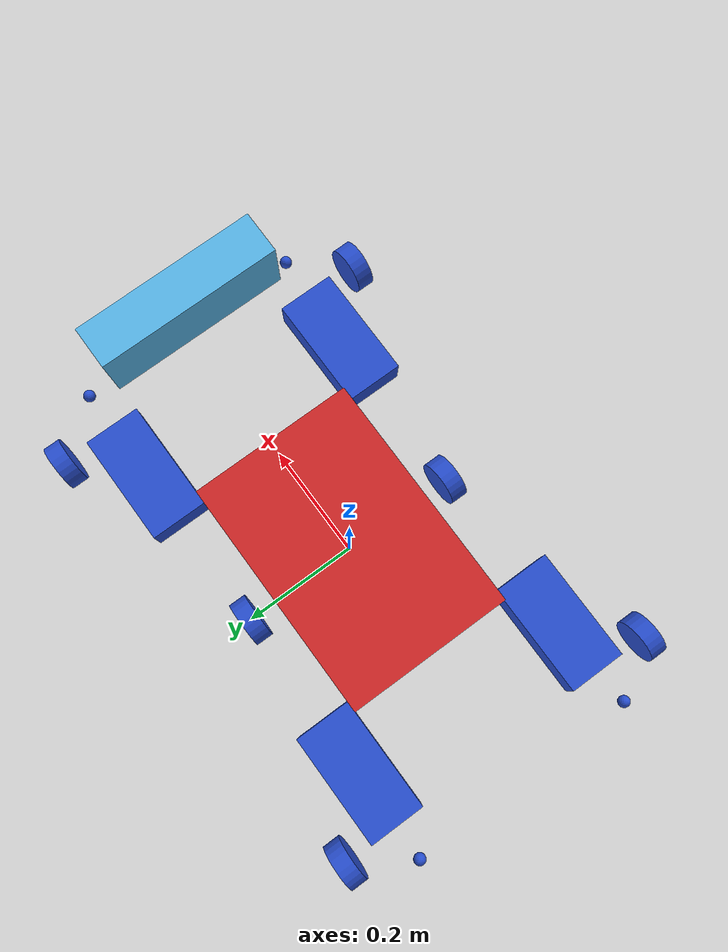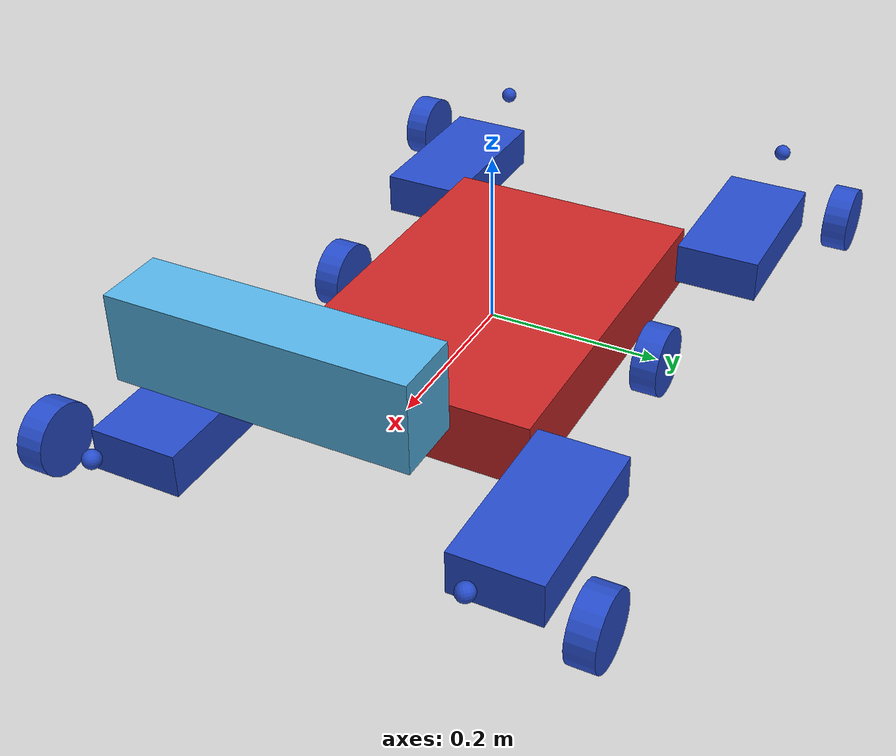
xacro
<?xml version='1.0'?>

<robot name="cpmbot" xmlns:xacro="http://www.ros.org/wiki/xacro">
<!-- variables and arguments-->
   <xacro:arg name="base_wheel_enabled" default="true" />
   <xacro:arg name="arms_enabled" default="true" />
   <xacro:arg name="arms_wheels_enabled" default="true" />
   <xacro:arg name="arms_mecanum_wheels_enabled" default="true" />
   <xacro:arg name="kinect_enabled" default="true" />
   <xacro:arg name="robotic_arm_enabled" default="false" />
   <xacro:arg name="gazebo_enabled" default="true" />

   <xacro:property name="M_PI" value="3.14159"/>

<!-- templates for the robot -->
   <xacro:include filename="$(find cpmbot)/description/robot/defaults.xacro" />
   <xacro:include filename="$(find cpmbot)/description/lib/inertia.xacro" />
   <xacro:include filename="$(find cpmbot)/description/lib/track_simulator.urdf.xacro" />
   <xacro:include filename="$(find cpmbot)/description/lib/wheel.urdf.xacro" />
   <xacro:include filename="$(find cpmbot)/description/lib/wheel_with_joint.urdf.xacro" />
   <xacro:include filename="$(find cpmbot)/description/lib/mecanum_wheel.urdf.xacro" />
   <xacro:include filename="$(find cpmbot)/description/lib/mecanum_wheel_with_joint.urdf.xacro" />
   <xacro:include filename="$(find cpmbot)/description/lib/arm.urdf.xacro" />
   <xacro:include filename="$(find cpmbot)/description/lib/materials.xacro" />
<!-- content of the robot -->
   <xacro:macro name="cpmbot">
      <xacro:include filename="$(find cpmbot)/description/robot/base_link.xacro" />
      <xacro:if value="$(arg gazebo_enabled)">
            <xacro:include filename="$(find cpmbot)/description/gazebo/base_link.gazebo" />
      </xacro:if>
      <xacro:if value="$(arg kinect_enabled)">
         <xacro:include filename="$(find cpmbot)/description/robot/kinect.urdf.xacro" />
         <xacro:if value="$(arg gazebo_enabled)">
            <xacro:include filename="$(find cpmbot)/description/gazebo/kinect.gazebo.xacro" />
            <xacro:kinect_camera_gazebo prefix="camera"/>
         </xacro:if>
      </xacro:if>
      <xacro:if value="$(arg base_wheel_enabled)">
         <xacro:include filename="$(find cpmbot)/description/robot/base_wheel.urdf.xacro" />
      </xacro:if>
      <xacro:if value="$(arg arms_enabled)">
         <xacro:include filename="$(find cpmbot)/description/robot/arms.urdf.xacro" />
      </xacro:if>
      <xacro:if value="$(arg robotic_arm_enabled)">
         <xacro:include filename="$(find cpmbot)/description/robot/robotic_arm.urdf.xacro" />
      </xacro:if>
      <xacro:if value="$(arg gazebo_enabled)">
         <xacro:include filename="$(find cpmbot)/description/gazebo/control.gazebo" />
	 <xacro:include filename="$(find cpmbot)/description/gazebo/imu.gazebo" />
      </xacro:if>
   </xacro:macro>

   <xacro:cpmbot />
</robot>

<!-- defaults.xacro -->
<robot name="mybot" xmlns:xacro="http://www.ros.org/wiki/xacro">

	<xacro:property name="base_link_x" value="0.44"/>
	<xacro:property name="base_link_y" value="0.3"/>
	<xacro:property name="base_link_z" value="0.076"/>
	<xacro:property name="base_link_mass" value="10.0"/>
	<xacro:property name="base_origin_xyz" value="0 0 0"/>
	<xacro:property name="base_origin_rpy" value="0.0 0 0.0"/>
	<xacro:property name="base_link_name" value="base_link"/>

	<xacro:property name="base_link_wheel_offset_x" value="0.0"/>
	<xacro:property name="base_link_wheel_offset_y" value="0.05"/>
	<xacro:property name="base_link_wheel_offset_z" value="0.00"/>

	<xacro:property name="track_simulator_origin_xyz" value="0 0 ${-base_link_z/2}"/>

	<xacro:property name="wheel_radius" value="0.04"/>
	<xacro:property name="wheel_heigth" value="0.03"/>

	<xacro:property name="wheel_mass" value="5"/>
	<xacro:property name="wheel_origin_angle" value="0 1.5707 1.5707"/>
	<xacro:property name="wheel_origin_position" value="0 0 0"/>

	<xacro:property name="mecanum_wheel_radius" value="0.01"/>

	<xacro:property name="mecanum_wheel_mass" value="5"/>
	<xacro:property name="mecanum_wheel_origin_angle_r" value="0"/>
	<xacro:property name="mecanum_wheel_origin_angle_p" value="1.5707"/>
	<xacro:property name="mecanum_wheel_origin_angle_y" value="0.785398"/>
	<xacro:property name="mecanum_wheel_origin_position" value="0 0 0"/>

	<xacro:property name="arm_size_x" value="0.2"/>
	<xacro:property name="arm_size_y" value="0.1"/>
	<xacro:property name="arm_size_z" value="0.05"/>

	<xacro:property name="arm_wheel_offset_x" value="0.0"/>
	<xacro:property name="arm_wheel_offset_y" value="0.0"/>
	<xacro:property name="arm_wheel_offset_z" value="0.0"/>

	<xacro:property name="wheel_mechanical_reduction" value="1"/>

	<xacro:property name="arm_mecanum_wheel_offset_x" value="0.055"/>
	<xacro:property name="arm_mecanum_wheel_offset_y" value="-0.1"/>
	<xacro:property name="arm_mecanum_wheel_offset_z" value="0.045"/>

	<xacro:property name="arm_joint_offset_x" value="-0.02"/>
	<xacro:property name="arm_joint_offset_y" value="0.05"/>

	<xacro:property name="kinect_joint_offset_x" value="${base_link_x/2+arm_size_x}"/>
	<xacro:property name="kinect_joint_offset_y" value="0"/>
	<xacro:property name="kinect_joint_offset_z" value="${arm_size_x}"/>

</robot>

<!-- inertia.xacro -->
<robot name="cpmbot" xmlns:xacro="http://www.ros.org/wiki/xacro">

	<xacro:macro name="default_inertial" params="mass">
	<inertial>
		<origin xyz="0 0 0" rpy="0 1.5707 1.5707"/>
		<mass value="${mass}" />
		<inertia ixx="0.1" ixy="0.0" ixz="0.0"
			 iyy="0.1" iyz="0.0" izz="0.1" />
	</inertial>
	</xacro:macro>

	<xacro:macro name="default_inertial_cube" params="mass x y z origin_xyz origin_rpy">

		<inertial>

			<origin xyz="${origin_xyz}" rpy="${origin_rpy}"/>

			<mass value="${mass}" />

			<inertia ixx="${1/12*mass*(z*z+x*x)}" ixy="0.0" ixz="0.0"

				 iyy="${1/12*mass*(y*y+x*x)}" iyz="0.0" izz="${1/12*mass*(y*y+z*z)}" />

		</inertial>

 	</xacro:macro>

	<xacro:macro name="default_inertial_sphere" params="mass r origin_xyz origin_rpy">

		<inertial>

			<origin xyz="${origin_xyz}" rpy="${origin_rpy}"/>

			<mass value="${mass}" />

			<inertia ixx="${2/5*mass*(r*r)}" ixy="0.0" ixz="0.0"

				 iyy="${2/5*mass*(r*r)}" iyz="0.0" izz="${2/5*mass*(r*r)}" />

		</inertial>

 	</xacro:macro>

	<xacro:macro name="default_inertial_cilinder" params="mass r h origin_xyz origin_rpy">
    <inertial>
        <origin xyz="${origin_xyz}" rpy="${origin_rpy}"/>
        <mass value="${mass}" />
        <inertia ixx="${1/2*mass*((3*r*r)+(h*h))}" ixy="0.0" ixz="0.0"

				 iyy="${1/2*mass*((3*r*r)+(h*h))}" iyz="0.0" izz="${1/2*mass*(r*r)}" />
    </inertial>
</xacro:macro>

 </robot>

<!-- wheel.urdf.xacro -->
<robot name="cpmbot"
    xmlns:xacro="http://www.ros.org/wiki/xacro">
    <xacro:macro name="wheel" params="name radius heigth">
        <!--xacro:property name="wheel_origin_angle" value="0 1.5707 1.5707"/-->
        <link name="${name}">
            <visual>
                <origin xyz="${wheel_origin_position}" rpy="${wheel_origin_angle}"/>
                <geometry>
                    <cylinder radius="${radius}" length="${heigth}"/>
                </geometry>
                <material name="blue"/>
            </visual>
            <collision>
                <origin xyz="${wheel_origin_position}" rpy="${wheel_origin_angle}"/>
                <geometry>
                    <cylinder radius="${radius}" length="${heigth}"/>
                </geometry>
            </collision>
            <xacro:default_inertial_cilinder mass="${wheel_mass}" r="${radius}" h="${heigth}" origin_xyz="${wheel_origin_position}" origin_rpy="${wheel_origin_angle}"/>
        </link>
    </xacro:macro>
</robot>

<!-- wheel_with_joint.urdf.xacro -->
<robot name="cpmbot"
    xmlns:xacro="http://www.ros.org/wiki/xacro">
    <xacro:macro name="wheel_with_joint" params="parent_name frontal_name pre_name left radius heigth jointX jointY jointZ">
        <xacro:property name="name_side" value="right"/>
        <xacro:property name="reflect_side" value="-1"/>
        <!-- evaluation -->
        <xacro:if value="${left}">
            <xacro:property name="name_side" value="left"/>
            <xacro:property name="reflect_side" value="1"/>
        </xacro:if>
        <xacro:wheel name="${parent_name}_${name_side}_wheel" radius="${radius}" heigth="${heigth}"></xacro:wheel>
        <joint type="continuous" name="${pre_name}_${frontal_name}_${name_side}_joint">
            <origin xyz="${jointX} ${reflect_side*jointY} ${jointZ}" rpy="0 0 0"/>
            <child link="${parent_name}_${name_side}_wheel"/>
            <parent link="${parent_name}"/>
            <axis xyz="0 1 0" rpy="0 0 0"/>
            <limit effort="100" velocity="100"/>
            <joint_properties damping="0.0" friction="0.0"/>
        </joint>
        <transmission name="${pre_name}_${frontal_name}_${name_side}_joint_trans">
            <type>transmission_interface/SimpleTransmission</type>
            <joint name="${pre_name}_${frontal_name}_${name_side}_joint">
                <hardwareInterface>hardware_interface/EffortJointInterface</hardwareInterface>
            </joint>
            <actuator name="${pre_name}_${frontal_name}_${name_side}_joint_motor">
                <hardwareInterface>hardware_interface/EffortJointInterface</hardwareInterface>
                <mechanicalReduction>1</mechanicalReduction>
            </actuator>
        </transmission>
    </xacro:macro>
</robot>

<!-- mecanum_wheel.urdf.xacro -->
<robot name="cpmbot" xmlns:xacro="http://www.ros.org/wiki/xacro">
	<xacro:macro name="mecanum_wheel" params="name radius origin_angle">
	<!--xacro:property name="wheel_origin_angle" value="0 1.5707 1.5707"/-->
	<link name="${name}">
	<visual>
		<origin xyz="${mecanum_wheel_origin_position}" rpy="${origin_angle}"/>
		<geometry>
			<sphere radius="${radius}"/>
		</geometry>
		<material name="blue"/>
	</visual>
	<collision>
		<origin xyz="${mecanum_wheel_origin_position}" rpy="${origin_angle}"/>
		<geometry>
			<sphere radius="${radius}"/>
		</geometry>
	</collision>
	<xacro:default_inertial_sphere mass="${mecanum_wheel_mass}" r="${radius}" origin_xyz="${mecanum_wheel_origin_position}" origin_rpy="${origin_angle}"/>
	</link>
	</xacro:macro>
</robot>

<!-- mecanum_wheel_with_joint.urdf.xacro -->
<robot name="cpmbot" xmlns:xacro="http://www.ros.org/wiki/xacro">

	<xacro:macro name="mecanum_wheel_with_joint" params="parent_name frontal_name pre_name left radius jointX jointY jointZ">

		<xacro:property name="name_side" value="right"/>
		<xacro:property name="reflect_side" value="-1"/>
		<xacro:property name="mecanum_wheel_origin_angle" value="${mecanum_wheel_origin_angle_p} ${mecanum_wheel_origin_angle_r} ${-mecanum_wheel_origin_angle_y}"/>
		<!-- evaluation -->
		<xacro:if value="${left}">
			<xacro:property name="name_side" value="left"/>
			<xacro:property name="reflect_side" value="1"/>
			<xacro:property name="mecanum_wheel_origin_angle" value="${mecanum_wheel_origin_angle_p} ${mecanum_wheel_origin_angle_r} ${mecanum_wheel_origin_angle_y}"/>
		</xacro:if>

		<xacro:mecanum_wheel name="${parent_name}_${name_side}_mecanum_wheel" radius="${radius}" origin_angle="${mecanum_wheel_origin_angle}">
		</xacro:mecanum_wheel>

		<joint type="continuous" name="${pre_name}_${frontal_name}_${name_side}_joint">
			<origin xyz="${jointX} ${reflect_side*jointY} ${jointZ}" rpy="0 0 0"/>
			<child link="${parent_name}_${name_side}_mecanum_wheel"/>
			<parent link="${parent_name}"/>
			<axis xyz="0 1 0" rpy="0 0 0"/>
			<limit effort="100" velocity="100"/>
			<joint_properties damping="0.0" friction="0.0"/>
		</joint>
		<transmission name="${pre_name}_${frontal_name}_${name_side}_joint_trans">
			<type>transmission_interface/SimpleTransmission</type>
			<joint name="${pre_name}_${frontal_name}_${name_side}_joint">
				<hardwareInterface>EffortJointInterface</hardwareInterface>
			</joint>
			<actuator name="${pre_name}_${frontal_name}_${name_side}_joint_motor">
				<hardwareInterface>EffortJointInterface</hardwareInterface>
				<mechanicalReduction>1</mechanicalReduction>
			</actuator>
		</transmission>
	<gazebo reference="${parent_name}_${name_side}_mecanum_wheel">
	        <kp>100000.0</kp>
	        <kd>100000.0</kd>
	        <mu1>0.0</mu1>
	        <mu2>0.</mu2>

	        <fdir1>1 0 0</fdir1>
	        <material>Gazebo/Green</material>
    	</gazebo>
	</xacro:macro>

</robot>

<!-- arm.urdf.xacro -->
<robot name="cpmbot" xmlns:xacro="http://www.ros.org/wiki/xacro">

	<xacro:macro name="arm" params="parent_name front left">
		<!-- internal variables-->
		<xacro:property name="name_front" value="back"/>
		<xacro:property name="name_side" value="right"/>
		<xacro:property name="reflect_front" value="-1"/>
		<xacro:property name="reflect_side" value="-1"/>
		<!-- evaluation -->
		<xacro:if value="${front}">
			<xacro:property name="name_front" value="front"/>
			<xacro:property name="reflect_front" value="1"/>
		</xacro:if>

		<xacro:if value="${left}">
			<xacro:property name="name_side" value="left"/>
			<xacro:property name="reflect_side" value="1"/>
		</xacro:if>
		<!-- elements  -->
		<link name="arm_${name_front}_${name_side}">
		<visual>
			<origin xyz="${reflect_front*arm_size_x/2} 0 0" rpy="0 0 0"/>
			<geometry>
			 	<box size="${arm_size_x} ${arm_size_y} ${arm_size_z}"/>
			</geometry>
			<material name="blue"/>
		</visual>
		<collision>
			<origin xyz="${reflect_front*arm_size_x/2} 0 0" rpy="0 0 0"/>
			<geometry>
				<box size="${arm_size_x} ${arm_size_y} ${arm_size_z}"/>
			</geometry>
		</collision>
		<xacro:default_inertial_cube mass="5" x="${arm_size_x}" y="${arm_size_y}" z="${arm_size_z}" origin_xyz="${reflect_front*arm_size_x/2} 0 0" origin_rpy="0 0 0"/>
		</link>

		<joint type="continuous" name="arm_${name_front}_${name_side}_joint">
			<origin xyz="${reflect_front*(base_link_x/2+arm_joint_offset_x)} ${reflect_side*(base_link_y/2+arm_joint_offset_y)} 0" rpy="0 0 0"/>
			<child link="arm_${name_front}_${name_side}"/>
			<parent link="${parent_name}"/>
			<axis xyz="0 1 0" rpy="0 0 0"/>
			<limit effort="100" velocity="100"/>
			<joint_properties damping="0.0" friction="0.0"/>
		</joint>
		<transmission name="arm_${name_front}_${name_side}_joint_trans">
			<type>transmission_interface/SimpleTransmission</type>
			<joint name="arm_${name_front}_${name_side}_joint">
				<hardwareInterface>hardware_interface/EffortJointInterface</hardwareInterface>
			</joint>
			<actuator name="arm_${name_front}_${name_side}_joint_motor">
				<hardwareInterface>hardware_interface/EffortJointInterface</hardwareInterface>
				<mechanicalReduction>1</mechanicalReduction>
			</actuator>
		</transmission>
		<!-- Normal Wheel -->
		<xacro:if value="$(arg arms_wheels_enabled)">
			<xacro:wheel_with_joint parent_name="arm_${name_front}_${name_side}" pre_name="track" frontal_name="${name_front}" left="${left}" radius="${wheel_radius}" heigth="${wheel_heigth}" jointX="${reflect_front*(arm_size_x+arm_wheel_offset_x)}" jointY="${arm_size_y+arm_wheel_offset_y}" jointZ="0">
			</xacro:wheel_with_joint>
		</xacro:if>
		<!-- Mecanum Wheel -->
		<xacro:if value="$(arg arms_mecanum_wheels_enabled)">
			<xacro:mecanum_wheel_with_joint parent_name="arm_${name_front}_${name_side}" pre_name="mecanum" frontal_name="${name_front}" left="${left}" radius="${mecanum_wheel_radius}" jointX="${reflect_front*(arm_size_x+arm_mecanum_wheel_offset_x)}" jointY="${arm_size_y+arm_mecanum_wheel_offset_y}" jointZ="${arm_mecanum_wheel_offset_z}">
			</xacro:mecanum_wheel_with_joint>
		</xacro:if>
	</xacro:macro>
</robot>

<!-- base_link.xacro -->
<robot name="cpmbot"
    xmlns:xacro="http://www.ros.org/wiki/xacro">
    <!-- base_link -->
    <link name='base_link'>
        <xacro:default_inertial_cube mass="${base_link_mass}"
    	x="${base_link_x}"
    	y="${base_link_y}"
    	z="${base_link_z}"
    	origin_xyz="${base_origin_xyz}"
    	origin_rpy="${base_origin_rpy}"></xacro:default_inertial_cube>
        <collision>
            <origin xyz="${base_origin_xyz}" rpy=" ${base_origin_rpy}"/>
            <geometry>
                <box size="${base_link_x} ${base_link_y} ${base_link_z}"/>
            </geometry>
        </collision>
        <visual>
            <origin xyz="${base_origin_xyz}" rpy=" ${base_origin_rpy}"/>
            <geometry>
                <box size="${base_link_x} ${base_link_y} ${base_link_z}"/>
            </geometry>
            <material name="red"/>
        </visual>
    </link>
</robot>

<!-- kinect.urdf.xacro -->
<robot name="mybot" xmlns:xacro="http://www.ros.org/wiki/xacro">

<xacro:macro name="kinect_camera" params="prefix:=camera">
    <!-- Create kinect reference frame -->
    <!-- Add mesh for kinect -->
    <link name="${prefix}_link">
      <origin xyz="0 0 0" rpy="0 0 0"/>
      <visual>
        <origin xyz="0 0 0" rpy="0 0 0"/>
        <geometry>
	       <box size="0.07 0.3 0.09"/>
        </geometry>
      </visual>
      <collision>
        <geometry>
          <box size="0.07 0.3 0.09"/>
        </geometry>
      </collision>
    </link>

  <link name="${prefix}_frame_optical"/>
  <joint name="${prefix}_optical_joint" type="fixed">
    <origin xyz="0 0 0" rpy="-1.5708 0 -1.5708"/>
    <parent link="${prefix}_link"/>
    <child link="${prefix}_frame_optical"/>
  </joint>

      <joint name="kinect_frame_joint" type="fixed">
        <origin xyz="${kinect_joint_offset_x} ${kinect_joint_offset_y} ${kinect_joint_offset_z}" rpy="0 0 0" />

	<parent link="${base_link_name}"/>
        <child link="camera_link"/>
      </joint>
</xacro:macro>

<xacro:kinect_camera prefix="camera"/>
</robot>
